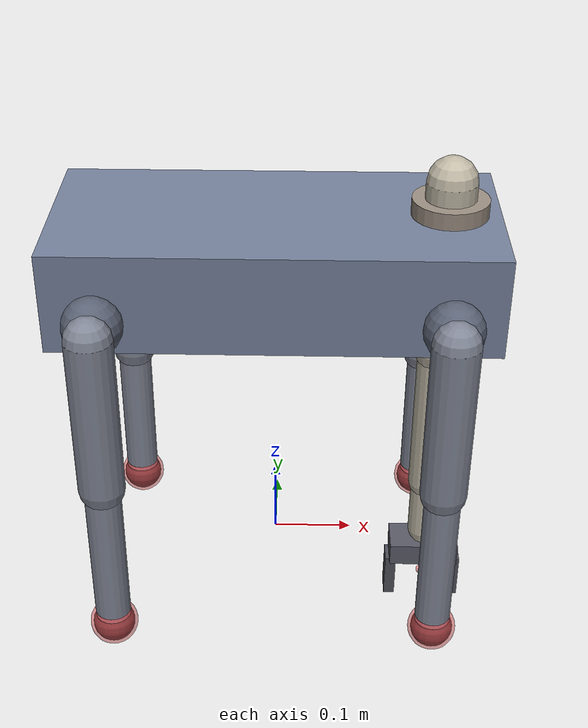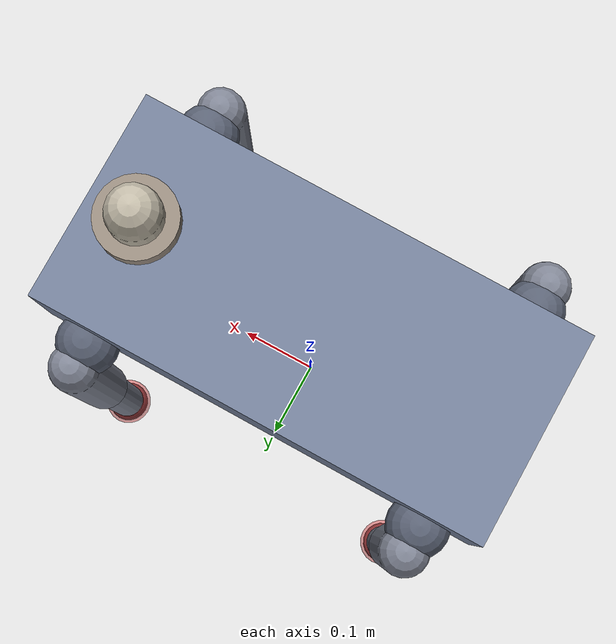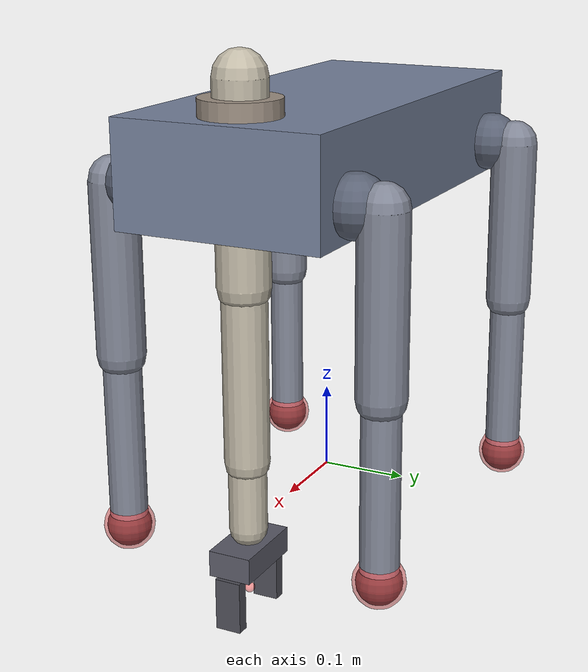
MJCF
<mujoco model="mobile_dog_arm_v2">
  <compiler angle="radian" autolimits="true" inertiafromgeom="true" />
  <option timestep="0.002" gravity="0 0 -9.81" integrator="implicitfast" />
  <default>
    <geom condim="3" friction="1.0 0.005 0.0001" solref="0.01 1" solimp="0.95 0.99 0.001" margin="0.0005" />
    <joint damping="0.5" armature="0.01" limited="true" />
    <position ctrllimited="true" forcelimited="true" />
    <velocity ctrllimited="true" forcelimited="true" />
  </default>
  <worldbody>
    <body name="torso" pos="0.00000 0.00000 0.40000">
      <freejoint name="root" />
      <geom name="torso_geom" type="box" size="0.26000 0.12000 0.06000" density="770.0" pos="0.00000 0.00000 0.00000" rgba="0.45 0.5 0.6 1" />
      <site name="torso_imu" pos="0.00000 0.00000 0.00000" size="0.0040" rgba="1 0.3 0.3 0.5" />
      <body name="fl_hip" pos="0.20000 0.13000 -0.02000">
        <joint name="fl_hip_roll" type="hinge" axis="1.00000 0.00000 0.00000" range="-0.60000 0.60000" />
        <geom name="fl_hip_geom" type="sphere" size="0.03500" density="900.0" pos="0.00000 0.00000 0.00000" rgba="0.35 0.38 0.45 1" />
        <body name="fl_thigh" pos="0.00000 0.03000 0.00000">
          <joint name="fl_hip_pitch" type="hinge" axis="0.00000 1.00000 0.00000" range="-1.60000 1.60000" />
          <geom name="fl_thigh_geom" type="capsule" size="0.02800" fromto="0.00000 0.00000 -0.20000 0.00000 0.00000 0.00000" density="900.0" rgba="0.5 0.52 0.58 1" />
          <body name="fl_shank" pos="0.00000 0.00000 -0.20000">
            <joint name="fl_knee" type="hinge" axis="0.00000 1.00000 0.00000" range="-2.40000 -0.15000" />
            <geom name="fl_shank_geom" type="capsule" size="0.02200" fromto="0.00000 0.00000 -0.21000 0.00000 0.00000 0.00000" density="900.0" rgba="0.5 0.52 0.58 1" />
            <body name="fl_foot" pos="0.00000 0.00000 -0.21000">
              <geom name="fl_foot_geom" type="sphere" size="0.02600" density="1100.0" pos="0.00000 0.00000 0.00000" rgba="0.2 0.2 0.22 1" friction="1.3 0.005 0.0001" />
              <site name="fl_foot_touch" pos="0.00000 0.00000 0.00000" size="0.0300" rgba="1 0.3 0.3 0.5" />
            </body>
          </body>
        </body>
      </body>
      <body name="fr_hip" pos="0.20000 -0.13000 -0.02000">
        <joint name="fr_hip_roll" type="hinge" axis="1.00000 0.00000 0.00000" range="-0.60000 0.60000" />
        <geom name="fr_hip_geom" type="sphere" size="0.03500" density="900.0" pos="0.00000 0.00000 0.00000" rgba="0.35 0.38 0.45 1" />
        <body name="fr_thigh" pos="0.00000 -0.03000 0.00000">
          <joint name="fr_hip_pitch" type="hinge" axis="0.00000 1.00000 0.00000" range="-1.60000 1.60000" />
          <geom name="fr_thigh_geom" type="capsule" size="0.02800" fromto="0.00000 0.00000 -0.20000 0.00000 0.00000 0.00000" density="900.0" rgba="0.5 0.52 0.58 1" />
          <body name="fr_shank" pos="0.00000 0.00000 -0.20000">
            <joint name="fr_knee" type="hinge" axis="0.00000 1.00000 0.00000" range="-2.40000 -0.15000" />
            <geom name="fr_shank_geom" type="capsule" size="0.02200" fromto="0.00000 0.00000 -0.21000 0.00000 0.00000 0.00000" density="900.0" rgba="0.5 0.52 0.58 1" />
            <body name="fr_foot" pos="0.00000 0.00000 -0.21000">
              <geom name="fr_foot_geom" type="sphere" size="0.02600" density="1100.0" pos="0.00000 0.00000 0.00000" rgba="0.2 0.2 0.22 1" friction="1.3 0.005 0.0001" />
              <site name="fr_foot_touch" pos="0.00000 0.00000 0.00000" size="0.0300" rgba="1 0.3 0.3 0.5" />
            </body>
          </body>
        </body>
      </body>
      <body name="hl_hip" pos="-0.20000 0.13000 -0.02000">
        <joint name="hl_hip_roll" type="hinge" axis="1.00000 0.00000 0.00000" range="-0.60000 0.60000" />
        <geom name="hl_hip_geom" type="sphere" size="0.03500" density="900.0" pos="0.00000 0.00000 0.00000" rgba="0.35 0.38 0.45 1" />
        <body name="hl_thigh" pos="0.00000 0.03000 0.00000">
          <joint name="hl_hip_pitch" type="hinge" axis="0.00000 1.00000 0.00000" range="-1.60000 1.60000" />
          <geom name="hl_thigh_geom" type="capsule" size="0.02800" fromto="0.00000 0.00000 -0.20000 0.00000 0.00000 0.00000" density="900.0" rgba="0.5 0.52 0.58 1" />
          <body name="hl_shank" pos="0.00000 0.00000 -0.20000">
            <joint name="hl_knee" type="hinge" axis="0.00000 1.00000 0.00000" range="-2.40000 -0.15000" />
            <geom name="hl_shank_geom" type="capsule" size="0.02200" fromto="0.00000 0.00000 -0.21000 0.00000 0.00000 0.00000" density="900.0" rgba="0.5 0.52 0.58 1" />
            <body name="hl_foot" pos="0.00000 0.00000 -0.21000">
              <geom name="hl_foot_geom" type="sphere" size="0.02600" density="1100.0" pos="0.00000 0.00000 0.00000" rgba="0.2 0.2 0.22 1" friction="1.3 0.005 0.0001" />
              <site name="hl_foot_touch" pos="0.00000 0.00000 0.00000" size="0.0300" rgba="1 0.3 0.3 0.5" />
            </body>
          </body>
        </body>
      </body>
      <body name="hr_hip" pos="-0.20000 -0.13000 -0.02000">
        <joint name="hr_hip_roll" type="hinge" axis="1.00000 0.00000 0.00000" range="-0.60000 0.60000" />
        <geom name="hr_hip_geom" type="sphere" size="0.03500" density="900.0" pos="0.00000 0.00000 0.00000" rgba="0.35 0.38 0.45 1" />
        <body name="hr_thigh" pos="0.00000 -0.03000 0.00000">
          <joint name="hr_hip_pitch" type="hinge" axis="0.00000 1.00000 0.00000" range="-1.60000 1.60000" />
          <geom name="hr_thigh_geom" type="capsule" size="0.02800" fromto="0.00000 0.00000 -0.20000 0.00000 0.00000 0.00000" density="900.0" rgba="0.5 0.52 0.58 1" />
          <body name="hr_shank" pos="0.00000 0.00000 -0.20000">
            <joint name="hr_knee" type="hinge" axis="0.00000 1.00000 0.00000" range="-2.40000 -0.15000" />
            <geom name="hr_shank_geom" type="capsule" size="0.02200" fromto="0.00000 0.00000 -0.21000 0.00000 0.00000 0.00000" density="900.0" rgba="0.5 0.52 0.58 1" />
            <body name="hr_foot" pos="0.00000 0.00000 -0.21000">
              <geom name="hr_foot_geom" type="sphere" size="0.02600" density="1100.0" pos="0.00000 0.00000 0.00000" rgba="0.2 0.2 0.22 1" friction="1.3 0.005 0.0001" />
              <site name="hr_foot_touch" pos="0.00000 0.00000 0.00000" size="0.0300" rgba="1 0.3 0.3 0.5" />
            </body>
          </body>
        </body>
      </body>
      <body name="arm_base" pos="0.20000 0.00000 0.06000">
        <joint name="arm_yaw" type="hinge" axis="0.00000 0.00000 1.00000" range="-2.60000 2.60000" />
        <geom name="arm_base_geom" type="cylinder" size="0.04500 0.02000" density="900.0" euler="0.00000 0.00000 0.00000" rgba="0.6 0.55 0.5 1" />
        <body name="arm_link_0" pos="0.00000 0.00000 0.04000">
          <joint name="arm_joint_0" type="hinge" axis="0.00000 1.00000 0.00000" range="-2.60000 2.60000" />
          <geom name="arm_link_0_geom" type="capsule" size="0.03000" fromto="0.00000 0.00000 -0.22000 0.00000 0.00000 0.00000" density="900.0" rgba="0.75 0.72 0.65 1" />
          <body name="arm_link_1" pos="0.00000 0.00000 -0.22000">
            <joint name="arm_joint_1" type="hinge" axis="0.00000 1.00000 0.00000" range="-2.60000 2.60000" />
            <geom name="arm_link_1_geom" type="capsule" size="0.02550" fromto="0.00000 0.00000 -0.20000 0.00000 0.00000 0.00000" density="900.0" rgba="0.75 0.72 0.65 1" />
            <body name="arm_link_2" pos="0.00000 0.00000 -0.20000">
              <joint name="arm_joint_2" type="hinge" axis="0.00000 1.00000 0.00000" range="-2.60000 2.60000" />
              <geom name="arm_link_2_geom" type="capsule" size="0.02167" fromto="0.00000 0.00000 -0.08000 0.00000 0.00000 0.00000" density="900.0" rgba="0.75 0.72 0.65 1" />
              <body name="arm_palm" pos="0.00000 0.00000 -0.11000">
                <geom name="arm_palm_geom" type="box" size="0.04500 0.02500 0.01500" density="900.0" pos="0.00000 0.00000 0.00000" rgba="0.35 0.35 0.4 1" />
                <body name="arm_finger_left" pos="0.04300 0.00000 -0.04500">
                  <geom name="arm_finger_left_geom" type="box" size="0.00700 0.01500 0.03000" density="900.0" pos="0.00000 0.00000 0.00000" rgba="0.3 0.3 0.34 1" friction="1.4 0.005 0.0001" />
                  <joint name="arm_grip_left" type="slide" axis="-1.00000 0.00000 0.00000" range="0.00000 0.03500" />
                </body>
                <body name="arm_finger_right" pos="-0.04300 0.00000 -0.04500">
                  <geom name="arm_finger_right_geom" type="box" size="0.00700 0.01500 0.03000" density="900.0" pos="0.00000 0.00000 0.00000" rgba="0.3 0.3 0.34 1" friction="1.4 0.005 0.0001" />
                  <joint name="arm_grip_right" type="slide" axis="1.00000 0.00000 0.00000" range="0.00000 0.03500" />
                </body>
                <site name="arm_grasp_centre" pos="0.00000 0.00000 -0.04500" size="0.0060" rgba="1 0.3 0.3 0.5" />
              </body>
            </body>
          </body>
        </body>
      </body>
    </body>
  </worldbody>
  <actuator>
    <position name="fl_hip_roll_servo" joint="fl_hip_roll" kp="120.0" ctrlrange="-0.60000 0.60000" forcerange="-30.00000 30.00000" />
    <position name="fl_hip_pitch_servo" joint="fl_hip_pitch" kp="160.0" ctrlrange="-1.60000 1.60000" forcerange="-40.00000 40.00000" />
    <position name="fl_knee_servo" joint="fl_knee" kp="160.0" ctrlrange="-2.40000 -0.15000" forcerange="-40.00000 40.00000" />
    <position name="fr_hip_roll_servo" joint="fr_hip_roll" kp="120.0" ctrlrange="-0.60000 0.60000" forcerange="-30.00000 30.00000" />
    <position name="fr_hip_pitch_servo" joint="fr_hip_pitch" kp="160.0" ctrlrange="-1.60000 1.60000" forcerange="-40.00000 40.00000" />
    <position name="fr_knee_servo" joint="fr_knee" kp="160.0" ctrlrange="-2.40000 -0.15000" forcerange="-40.00000 40.00000" />
    <position name="hl_hip_roll_servo" joint="hl_hip_roll" kp="120.0" ctrlrange="-0.60000 0.60000" forcerange="-30.00000 30.00000" />
    <position name="hl_hip_pitch_servo" joint="hl_hip_pitch" kp="160.0" ctrlrange="-1.60000 1.60000" forcerange="-40.00000 40.00000" />
    <position name="hl_knee_servo" joint="hl_knee" kp="160.0" ctrlrange="-2.40000 -0.15000" forcerange="-40.00000 40.00000" />
    <position name="hr_hip_roll_servo" joint="hr_hip_roll" kp="120.0" ctrlrange="-0.60000 0.60000" forcerange="-30.00000 30.00000" />
    <position name="hr_hip_pitch_servo" joint="hr_hip_pitch" kp="160.0" ctrlrange="-1.60000 1.60000" forcerange="-40.00000 40.00000" />
    <position name="hr_knee_servo" joint="hr_knee" kp="160.0" ctrlrange="-2.40000 -0.15000" forcerange="-40.00000 40.00000" />
    <position name="arm_yaw_servo" joint="arm_yaw" kp="75.0" ctrlrange="-2.60000 2.60000" forcerange="-25.00000 25.00000" />
    <position name="arm_joint_0_servo" joint="arm_joint_0" kp="90.0" ctrlrange="-2.60000 2.60000" forcerange="-30.00000 30.00000" />
    <position name="arm_joint_1_servo" joint="arm_joint_1" kp="75.0" ctrlrange="-2.60000 2.60000" forcerange="-25.00000 25.00000" />
    <position name="arm_joint_2_servo" joint="arm_joint_2" kp="45.0" ctrlrange="-2.60000 2.60000" forcerange="-15.00000 15.00000" />
    <position name="arm_grip_left_servo" joint="arm_grip_left" kp="400.0" ctrlrange="0.00000 0.03500" forcerange="-40.00000 40.00000" />
    <position name="arm_grip_right_servo" joint="arm_grip_right" kp="400.0" ctrlrange="0.00000 0.03500" forcerange="-40.00000 40.00000" />
  </actuator>
  <sensor>
    <gyro name="torso_gyro" site="torso_imu" />
    <accelerometer name="torso_accel" site="torso_imu" />
    <framequat name="torso_orientation" objtype="site" objname="torso_imu" />
    <touch name="fl_foot_contact" site="fl_foot_touch" />
    <touch name="fr_foot_contact" site="fr_foot_touch" />
    <touch name="hl_foot_contact" site="hl_foot_touch" />
    <touch name="hr_foot_contact" site="hr_foot_touch" />
  </sensor>
</mujoco>
